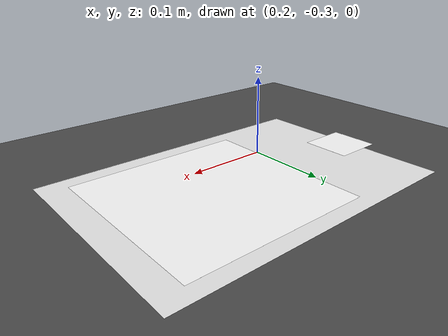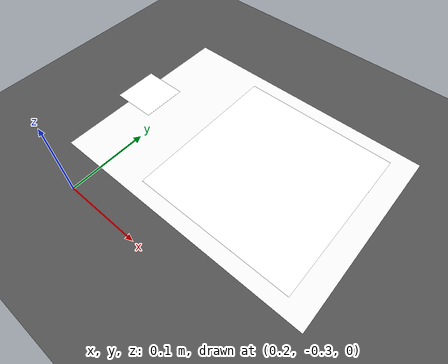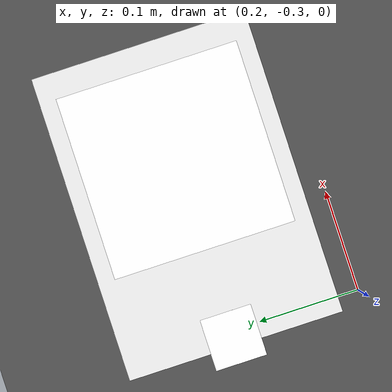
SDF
<sdf version="1.7">
 <world name="map">
  <light name="sun" type="directional">
   <pose>0 0 10 0 -0 0</pose>
   <diffuse>0.8 0.8 0.8 1</diffuse>
   <specular>0.2 0.2 0.2 1</specular>
   <attenuation>
    <range>1000</range>
    <constant>0.9</constant>
    <linear>0.01</linear>
    <quadratic>0.001</quadratic>
   </attenuation>
   <direction>-0.5 0.1 -0.9</direction>
   <spot><inner_angle>0</inner_angle><outer_angle>0</outer_angle><falloff>0</falloff></spot>
  </light>
  <model name="ground_plane">
   <static>1</static>
   <link name="link">
    <collision name="collision">
     <geometry><plane><normal>0 0 1</normal><size>100 100</size></plane></geometry>
     <surface>
      <contact><collide_bitmask>65535</collide_bitmask></contact>
      <friction><ode><mu>100</mu><mu2>50</mu2></ode></friction>
     </surface>
    </collision>
    <visual name="visual">
     <cast_shadows>0</cast_shadows>
     <geometry><plane><normal>0 0 1</normal><size>100 100</size></plane></geometry>
     <material>
      <script><uri>file://media/materials/scripts/gazebo.material</uri><name>Gazebo/Grey</name></script>
     </material>
    </visual>
   </link>
  </model>
  <scene><ambient>0 0 0 1</ambient><shadows>0</shadows><background>0.7 0.7 0.7 1</background></scene>
  <physics name="default_physics" default="0" type="ode">
   <ode>
    <solver>
     <type>quick</type>
     <iters>10</iters>
     <sor>1.3</sor>
     <use_dynamic_moi_rescaling>0</use_dynamic_moi_rescaling>
    </solver>
    <constraints>
     <cfm>0</cfm>
     <erp>0.2</erp>
     <contact_max_correcting_vel>100</contact_max_correcting_vel>
     <contact_surface_layer>0.001</contact_surface_layer>
    </constraints>
   </ode>
   <max_step_size>0.004</max_step_size>
   <real_time_factor>1</real_time_factor>
   <real_time_update_rate>250</real_time_update_rate>
  </physics>
  <gravity>0 0 -9.8066</gravity>
  <magnetic_field>6e-06 2.3e-05 -4.2e-05</magnetic_field>
  <atmosphere type="adiabatic"/>
  <spherical_coordinates>
   <surface_model>EARTH_WGS84</surface_model>
   <latitude_deg>0</latitude_deg>
   <longitude_deg>0</longitude_deg>
   <elevation>0</elevation>
   <heading_deg>0</heading_deg>
  </spherical_coordinates>
  <model name="asphalt_plane">
   <static>1</static>
   <link name="link">
    <collision name="collision"><geometry><box><size>200 200 0.1</size></box></geometry></collision>
    <visual name="visual">
     <cast_shadows>0</cast_shadows>
     <geometry><box><size>200 200 0.1</size></box></geometry>
     <material>
      <script>
       <uri>model://asphalt_plane/materials/scripts</uri>
       <uri>model://asphalt_plane/materials/textures</uri>
       <name>vrc/asphalt</name>
      </script>
     </material>
    </visual>
   </link>
  </model>
  <model name="aruco_visual_marker_0_pad">
   <frame name="aruco_visual_marker_0::__model__" attached_to="aruco_visual_marker_0::marker">
    <pose relative_to="__model__">0 0 0 0 -0 0</pose>
   </frame>
   <link name="aruco_visual_marker_0::marker">
    <pose relative_to="aruco_visual_marker_0::__model__">0 0 0 0 -0 0</pose>
    <visual name="visual">
     <geometry><box><size>0.1778 0.1778 1e-05</size></box></geometry>
     <material>
      <script>
       <uri>model://aruco_visual_marker_0/materials/scripts</uri>
       <uri>model://aruco_visual_marker_0/materials/textures</uri>
       <name>ArucoVisualMarker0/Marker</name>
      </script>
      <ambient>1 1 1 1</ambient>
      <diffuse>1 1 1 1</diffuse>
      <specular>0 0 0 1</specular>
      <emissive>1 1 1 0</emissive>
      <shader type="vertex"><normal_map>__default__</normal_map></shader>
     </material>
    </visual>
    <collision name="collision"><geometry><box><size>0.1778 0.1778 1e-05</size></box></geometry></collision>
   </link>
   <link name="aruco_visual_marker_0::marker_pad">
    <pose relative_to="aruco_visual_marker_0::marker">0 0 -1e-05 0 -0 0</pose>
    <visual name="visual">
     <geometry><box><size>0.1778 0.1778 1e-05</size></box></geometry>
     <material>
      <lighting>1</lighting>
      <script><uri>file://media/materials/scripts/gazebo.material</uri><name>Gazebo/White</name></script>
      <ambient>0.3 0.3 0.3 1</ambient>
      <diffuse>0.7 0.7 0.7 1</diffuse>
      <specular>0.01 0.01 0.01 1</specular>
      <emissive>1 1 1 0</emissive>
      <shader type="vertex"><normal_map>__default__</normal_map></shader>
     </material>
    </visual>
    <collision name="collision"><geometry><box><size>0.1778 0.1778 1e-05</size></box></geometry></collision>
   </link>
   <joint name="aruco_visual_marker_0::marker_JOINT_marker_pad" type="revolute">
    <parent>aruco_visual_marker_0::marker</parent>
    <child>aruco_visual_marker_0::marker_pad</child>
    <axis>
     <xyz>0 0 1</xyz>
     <limit><upper>0</upper><lower>0</lower></limit>
     <dynamics><spring_reference>0</spring_reference><spring_stiffness>0</spring_stiffness></dynamics>
    </axis>
   </joint>
   <static>1</static>
   <link name="marker_pad_large">
    <pose relative_to="aruco_visual_marker_0::marker">-0.035 0 -1e-05 0 -0 0</pose>
    <visual name="visual">
     <geometry><box><size>0.297 0.21 1e-05</size></box></geometry>
     <material>
      <lighting>1</lighting>
      <script><uri>file://media/materials/scripts/gazebo.material</uri><name>Gazebo/White</name></script>
      <ambient>0.3 0.3 0.3 1</ambient>
      <diffuse>0.7 0.7 0.7 1</diffuse>
      <specular>0.01 0.01 0.01 1</specular>
      <emissive>1 1 1 0</emissive>
      <shader type="vertex"><normal_map>__default__</normal_map></shader>
     </material>
    </visual>
    <collision name="collision">
     <geometry><box><size>0.297 0.21 1e-05</size></box></geometry>
     <surface>
      <friction>
       <ode><mu>1</mu><mu2>1</mu2><fdir1>0 0 0</fdir1><slip1>0</slip1><slip2>0</slip2></ode>
       <torsional>
        <coefficient>1</coefficient>
        <patch_radius>0</patch_radius>
        <surface_radius>0</surface_radius>
        <use_patch_radius>1</use_patch_radius>
        <ode><slip>0</slip></ode>
       </torsional>
      </friction>
      <bounce><restitution_coefficient>0</restitution_coefficient><threshold>1e+06</threshold></bounce>
      <contact>
       <collide_without_contact>0</collide_without_contact>
       <collide_without_contact_bitmask>1</collide_without_contact_bitmask>
       <collide_bitmask>1</collide_bitmask>
       <ode>
        <soft_cfm>0</soft_cfm>
        <soft_erp>0.2</soft_erp>
        <kp>1e+13</kp>
        <kd>1</kd>
        <max_vel>0.01</max_vel>
        <min_depth>0</min_depth>
       </ode>
       <bullet>
        <split_impulse>1</split_impulse>
        <split_impulse_penetration_threshold>-0.01</split_impulse_penetration_threshold>
        <soft_cfm>0</soft_cfm>
        <soft_erp>0.2</soft_erp>
        <kp>1e+13</kp>
        <kd>1</kd>
       </bullet>
      </contact>
     </surface>
    </collision>
   </link>
   <link name="marker_num">
    <pose relative_to="marker_pad_large">-0.14 0 1e-05 0 -0 0</pose>
    <visual name="visual">
     <geometry><box><size>0.05 0.05 1e-05</size></box></geometry>
     <material>
      <script>
       <uri>model://aruco_visual_marker_0_pad/materials/scripts</uri>
       <uri>model://aruco_visual_marker_0_pad/materials/textures</uri>
       <name>ArucoVisualMarker0/Num</name>
      </script>
      <ambient>1 1 1 1</ambient>
      <diffuse>1 1 1 1</diffuse>
      <specular>0 0 0 1</specular>
      <emissive>1 1 1 0</emissive>
      <shader type="vertex"><normal_map>__default__</normal_map></shader>
     </material>
    </visual>
    <collision name="collision">
     <geometry><box><size>0.05 0.05 1e-05</size></box></geometry>
     <surface>
      <friction>
       <ode><mu>1</mu><mu2>1</mu2><fdir1>0 0 0</fdir1><slip1>0</slip1><slip2>0</slip2></ode>
       <torsional>
        <coefficient>1</coefficient>
        <patch_radius>0</patch_radius>
        <surface_radius>0</surface_radius>
        <use_patch_radius>1</use_patch_radius>
        <ode><slip>0</slip></ode>
       </torsional>
      </friction>
      <bounce><restitution_coefficient>0</restitution_coefficient><threshold>1e+06</threshold></bounce>
      <contact>
       <collide_without_contact>0</collide_without_contact>
       <collide_without_contact_bitmask>1</collide_without_contact_bitmask>
       <collide_bitmask>1</collide_bitmask>
       <ode>
        <soft_cfm>0</soft_cfm>
        <soft_erp>0.2</soft_erp>
        <kp>1e+13</kp>
        <kd>1</kd>
        <max_vel>0.01</max_vel>
        <min_depth>0</min_depth>
       </ode>
       <bullet>
        <split_impulse>1</split_impulse>
        <split_impulse_penetration_threshold>-0.01</split_impulse_penetration_threshold>
        <soft_cfm>0</soft_cfm>
        <soft_erp>0.2</soft_erp>
        <kp>1e+13</kp>
        <kd>1</kd>
       </bullet>
      </contact>
     </surface>
    </collision>
   </link>
   <joint name="marker_JOINT_marker_pad_large" type="revolute">
    <parent>aruco_visual_marker_0::marker</parent>
    <child>marker_pad_large</child>
    <axis>
     <xyz>0 0 1</xyz>
     <limit><upper>0</upper><lower>0</lower></limit>
     <dynamics><spring_reference>0</spring_reference><spring_stiffness>0</spring_stiffness></dynamics>
    </axis>
   </joint>
   <joint name="pad_large_JOINT_marker_num" type="revolute">
    <parent>marker_pad_large</parent>
    <child>marker_num</child>
    <axis>
     <xyz>0 0 1</xyz>
     <limit><upper>0</upper><lower>0</lower></limit>
     <dynamics><spring_reference>0</spring_reference><spring_stiffness>0</spring_stiffness></dynamics>
    </axis>
   </joint>
   <static>1</static>
   <pose>0.373196 -0.171464 0.0502 0 -0 0</pose>
  </model>
 </world>
</sdf>
